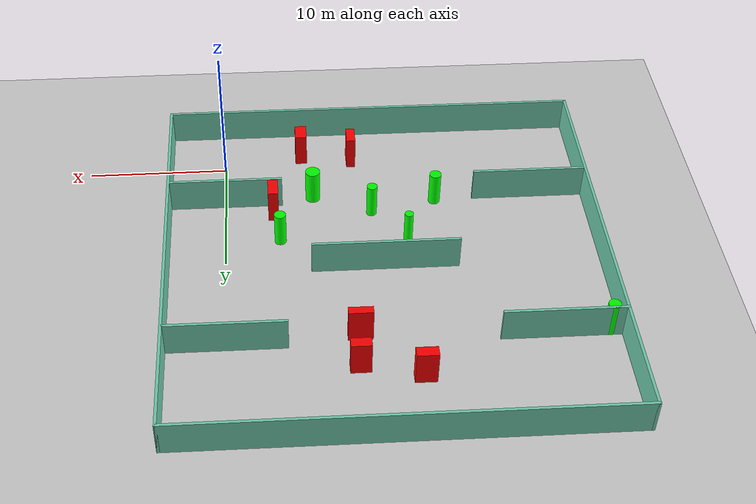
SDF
<sdf version="1.7">
 <world name="default">
  <light name="sun" type="directional">
   <pose>0 0 10 0 -0 0</pose>
   <diffuse>0.8 0.8 0.8 1</diffuse>
   <specular>0.2 0.2 0.2 1</specular>
   <attenuation>
    <range>1000</range>
    <constant>0.9</constant>
    <linear>0.01</linear>
    <quadratic>0.001</quadratic>
   </attenuation>
   <direction>-0.5 0.1 -0.9</direction>
   <spot><inner_angle>0</inner_angle><outer_angle>0</outer_angle><falloff>0</falloff></spot>
  </light>
  <model name="ground_plane">
   <static>1</static>
   <link name="link">
    <collision name="collision">
     <geometry><plane><normal>0 0 1</normal><size>100 100</size></plane></geometry>
     <surface>
      <contact><collide_bitmask>65535</collide_bitmask></contact>
      <friction><ode><mu>100</mu><mu2>50</mu2></ode></friction>
     </surface>
    </collision>
    <visual name="visual">
     <cast_shadows>0</cast_shadows>
     <geometry><plane><normal>0 0 1</normal><size>100 100</size></plane></geometry>
     <material>
      <script><uri>file://media/materials/scripts/gazebo.material</uri><name>Gazebo/Grey</name></script>
     </material>
    </visual>
   </link>
  </model>
  <gravity>0 0 -9.8</gravity>
  <magnetic_field>6e-06 2.3e-05 -4.2e-05</magnetic_field>
  <atmosphere type="adiabatic"/>
  <physics type="ode">
   <max_step_size>0.001</max_step_size>
   <real_time_factor>1</real_time_factor>
   <real_time_update_rate>1000</real_time_update_rate>
  </physics>
  <scene><ambient>0.4 0.4 0.4 1</ambient><background>0.7 0.7 0.7 1</background><shadows>1</shadows></scene>
  <spherical_coordinates>
   <surface_model>EARTH_WGS84</surface_model>
   <latitude_deg>0</latitude_deg>
   <longitude_deg>0</longitude_deg>
   <elevation>0</elevation>
   <heading_deg>0</heading_deg>
  </spherical_coordinates>
  <model name="my_base_walls">
   <link name="Wall_10">
    <collision name="Wall_10_Collision">
     <geometry><box><size>8.2 0.2 2.5</size></box></geometry>
     <pose>0 0 1.25 0 -0 0</pose>
    </collision>
    <visual name="Wall_10_Visual">
     <pose>0 0 1.25 0 -0 0</pose>
     <geometry><box><size>8.2 0.2 2.5</size></box></geometry>
     <material>
      <script><uri>file://media/materials/scripts/gazebo.material</uri><name>Gazebo/Grey</name></script>
      <ambient>0.435294 0.796078 0.67451 1</ambient>
     </material>
     <meta><layer>0</layer></meta>
    </visual>
    <pose>-11 -7 0 0 -0 0</pose>
   </link>
   <link name="Wall_12">
    <collision name="Wall_12_Collision">
     <geometry><box><size>8.2 0.2 2.5</size></box></geometry>
     <pose>0 0 1.25 0 -0 0</pose>
    </collision>
    <visual name="Wall_12_Visual">
     <pose>0 0 1.25 0 -0 0</pose>
     <geometry><box><size>8.2 0.2 2.5</size></box></geometry>
     <material>
      <script><uri>file://media/materials/scripts/gazebo.material</uri><name>Gazebo/Grey</name></script>
      <ambient>0.435294 0.796078 0.67451 1</ambient>
     </material>
     <meta><layer>0</layer></meta>
    </visual>
    <pose>-11 7 0 0 -0 0</pose>
   </link>
   <link name="Wall_14">
    <collision name="Wall_14_Collision">
     <geometry><box><size>8.2 0.2 2.5</size></box></geometry>
     <pose>0 0 1.25 0 -0 0</pose>
    </collision>
    <visual name="Wall_14_Visual">
     <pose>0 0 1.25 0 -0 0</pose>
     <geometry><box><size>8.2 0.2 2.5</size></box></geometry>
     <material>
      <script><uri>file://media/materials/scripts/gazebo.material</uri><name>Gazebo/Grey</name></script>
      <ambient>0.435294 0.796078 0.67451 1</ambient>
     </material>
     <meta><layer>0</layer></meta>
    </visual>
    <pose>11 7 0 0 -0 3.14159</pose>
   </link>
   <link name="Wall_16">
    <collision name="Wall_16_Collision">
     <geometry><box><size>10.2 0.2 2.5</size></box></geometry>
     <pose>0 0 1.25 0 -0 0</pose>
    </collision>
    <visual name="Wall_16_Visual">
     <pose>0 0 1.25 0 -0 0</pose>
     <geometry><box><size>10.2 0.2 2.5</size></box></geometry>
     <material>
      <script><uri>file://media/materials/scripts/gazebo.material</uri><name>Gazebo/Grey</name></script>
      <ambient>0.435294 0.796078 0.67451 1</ambient>
     </material>
     <meta><layer>0</layer></meta>
    </visual>
    <pose>0 0 0 0 -0 3.14159</pose>
   </link>
   <link name="Wall_2">
    <collision name="Wall_2_Collision">
     <geometry><box><size>30.2 0.2 2.5</size></box></geometry>
     <pose>0 0 1.25 0 -0 0</pose>
    </collision>
    <visual name="Wall_2_Visual">
     <pose>0 0 1.25 0 -0 0</pose>
     <geometry><box><size>30.2 0.2 2.5</size></box></geometry>
     <material>
      <script><uri>file://media/materials/scripts/gazebo.material</uri><name>Gazebo/Grey</name></script>
      <ambient>0.435294 0.796078 0.67451 1</ambient>
     </material>
     <meta><layer>0</layer></meta>
    </visual>
    <pose>0 -15 0 0 -0 3.14159</pose>
   </link>
   <link name="Wall_3">
    <collision name="Wall_3_Collision">
     <geometry><box><size>30.2 0.2 2.5</size></box></geometry>
     <pose>0 0 1.25 0 -0 0</pose>
    </collision>
    <visual name="Wall_3_Visual">
     <pose>0 0 1.25 0 -0 0</pose>
     <geometry><box><size>30.2 0.2 2.5</size></box></geometry>
     <material>
      <script><uri>file://media/materials/scripts/gazebo.material</uri><name>Gazebo/Grey</name></script>
      <ambient>0.435294 0.796078 0.67451 1</ambient>
     </material>
     <meta><layer>0</layer></meta>
    </visual>
    <pose>-15 0 0 0 -0 1.5708</pose>
   </link>
   <link name="Wall_4">
    <collision name="Wall_4_Collision">
     <geometry><box><size>30.2 0.2 2.5</size></box></geometry>
     <pose>0 0 1.25 0 -0 0</pose>
    </collision>
    <visual name="Wall_4_Visual">
     <pose>0 0 1.25 0 -0 0</pose>
     <geometry><box><size>30.2 0.2 2.5</size></box></geometry>
     <material>
      <script><uri>file://media/materials/scripts/gazebo.material</uri><name>Gazebo/Grey</name></script>
      <ambient>0.435294 0.796078 0.67451 1</ambient>
     </material>
     <meta><layer>0</layer></meta>
    </visual>
    <pose>0 15 0 0 -0 0</pose>
   </link>
   <link name="Wall_6">
    <collision name="Wall_6_Collision">
     <geometry><box><size>30.2 0.2 2.5</size></box></geometry>
     <pose>0 0 1.25 0 -0 0</pose>
    </collision>
    <visual name="Wall_6_Visual">
     <pose>0 0 1.25 0 -0 0</pose>
     <geometry><box><size>30.2 0.2 2.5</size></box></geometry>
     <material>
      <script><uri>file://media/materials/scripts/gazebo.material</uri><name>Gazebo/Grey</name></script>
      <ambient>0.435294 0.796078 0.67451 1</ambient>
     </material>
     <meta><layer>0</layer></meta>
    </visual>
    <pose>15 0 0 0 -0 1.5708</pose>
   </link>
   <link name="Wall_8">
    <collision name="Wall_8_Collision">
     <geometry><box><size>8.2 0.2 2.5</size></box></geometry>
     <pose>0 0 1.25 0 -0 0</pose>
    </collision>
    <visual name="Wall_8_Visual">
     <pose>0 0 1.25 0 -0 0</pose>
     <geometry><box><size>8.2 0.2 2.5</size></box></geometry>
     <material>
      <script><uri>file://media/materials/scripts/gazebo.material</uri><name>Gazebo/Grey</name></script>
      <ambient>0.435294 0.796078 0.67451 1</ambient>
     </material>
     <meta><layer>0</layer></meta>
    </visual>
    <pose>11 -7 0 0 -0 3.14159</pose>
   </link>
   <static>1</static>
   <pose>-11 11 0 0 -0 0</pose>
  </model>
  <model name="cylinder1">
   <static>1</static>
   <link name="link">
    <inertial>
     <mass>1</mass>
     <inertia><ixx>0.5</ixx><ixy>0</ixy><ixz>0</ixz><iyy>0.5</iyy><iyz>0</iyz><izz>1</izz></inertia>
    </inertial>
    <collision name="collision">
     <geometry><cylinder><radius>0.3688242083239773</radius><length>2.5</length></cylinder></geometry>
    </collision>
    <visual name="visual">
     <geometry><cylinder><radius>0.3688242083239773</radius><length>2.5</length></cylinder></geometry>
     <material>
      <ambient>0 1 0 1</ambient>
      <diffuse>0 1 0 1</diffuse>
      <specular>0.1 0.1 0.1 1</specular>
      <emissive>0 0 0 0</emissive>
     </material>
    </visual>
   </link>
   <pose>-10.479960596599351 5.245953925893517 1.25 0 0 0</pose>
  </model>
  <model name="cylinder2">
   <static>1</static>
   <link name="link">
    <inertial>
     <mass>1</mass>
     <inertia><ixx>0.5</ixx><ixy>0</ixy><ixz>0</ixz><iyy>0.5</iyy><iyz>0</iyz><izz>1</izz></inertia>
    </inertial>
    <collision name="collision">
     <geometry><cylinder><radius>0.41643519739053203</radius><length>2.5</length></cylinder></geometry>
    </collision>
    <visual name="visual">
     <geometry><cylinder><radius>0.41643519739053203</radius><length>2.5</length></cylinder></geometry>
     <material>
      <ambient>0 1 0 1</ambient>
      <diffuse>0 1 0 1</diffuse>
      <specular>0.1 0.1 0.1 1</specular>
      <emissive>0 0 0 0</emissive>
     </material>
    </visual>
   </link>
   <pose>-15.124204734801511 4.175568713787232 1.25 0 0 0</pose>
  </model>
  <model name="cylinder3">
   <static>1</static>
   <link name="link">
    <inertial>
     <mass>1</mass>
     <inertia><ixx>0.5</ixx><ixy>0</ixy><ixz>0</ixz><iyy>0.5</iyy><iyz>0</iyz><izz>1</izz></inertia>
    </inertial>
    <collision name="collision">
     <geometry><cylinder><radius>0.40894727487968563</radius><length>2.5</length></cylinder></geometry>
    </collision>
    <visual name="visual">
     <geometry><cylinder><radius>0.40894727487968563</radius><length>2.5</length></cylinder></geometry>
     <material>
      <ambient>0 1 0 1</ambient>
      <diffuse>0 1 0 1</diffuse>
      <specular>0.1 0.1 0.1 1</specular>
      <emissive>0 0 0 0</emissive>
     </material>
    </visual>
   </link>
   <pose>-3.860155319508422 7.8905841963513925 1.25 0 0 0</pose>
  </model>
  <model name="cylinder4">
   <static>1</static>
   <link name="link">
    <inertial>
     <mass>1</mass>
     <inertia><ixx>0.5</ixx><ixy>0</ixy><ixz>0</ixz><iyy>0.5</iyy><iyz>0</iyz><izz>1</izz></inertia>
    </inertial>
    <collision name="collision">
     <geometry><cylinder><radius>0.422012442263779</radius><length>2.5</length></cylinder></geometry>
    </collision>
    <visual name="visual">
     <geometry><cylinder><radius>0.422012442263779</radius><length>2.5</length></cylinder></geometry>
     <material>
      <ambient>0 1 0 1</ambient>
      <diffuse>0 1 0 1</diffuse>
      <specular>0.1 0.1 0.1 1</specular>
      <emissive>0 0 0 0</emissive>
     </material>
    </visual>
   </link>
   <pose>-25.149906314489314 17.715198458942215 1.25 0 0 0</pose>
  </model>
  <model name="cylinder5">
   <static>1</static>
   <link name="link">
    <inertial>
     <mass>1</mass>
     <inertia><ixx>0.5</ixx><ixy>0</ixy><ixz>0</ixz><iyy>0.5</iyy><iyz>0</iyz><izz>1</izz></inertia>
    </inertial>
    <collision name="collision">
     <geometry><cylinder><radius>0.5229236391042835</radius><length>2.5</length></cylinder></geometry>
    </collision>
    <visual name="visual">
     <geometry><cylinder><radius>0.5229236391042835</radius><length>2.5</length></cylinder></geometry>
     <material>
      <ambient>0 1 0 1</ambient>
      <diffuse>0 1 0 1</diffuse>
      <specular>0.1 0.1 0.1 1</specular>
      <emissive>0 0 0 0</emissive>
     </material>
    </visual>
   </link>
   <pose>-6.335941599820316 3.395346241374412 1.25 0 0 0</pose>
  </model>
  <model name="cylinder6">
   <static>1</static>
   <link name="link">
    <inertial>
     <mass>1</mass>
     <inertia><ixx>0.5</ixx><ixy>0</ixy><ixz>0</ixz><iyy>0.5</iyy><iyz>0</iyz><izz>1</izz></inertia>
    </inertial>
    <collision name="collision">
     <geometry><cylinder><radius>0.306943767927146</radius><length>2.5</length></cylinder></geometry>
    </collision>
    <visual name="visual">
     <geometry><cylinder><radius>0.306943767927146</radius><length>2.5</length></cylinder></geometry>
     <material>
      <ambient>0 1 0 1</ambient>
      <diffuse>0 1 0 1</diffuse>
      <specular>0.1 0.1 0.1 1</specular>
      <emissive>0 0 0 0</emissive>
     </material>
    </visual>
   </link>
   <pose>-12.811644104645193 8.310327251365672 1.25 0 0 0</pose>
  </model>
  <model name="box1">
   <static>1</static>
   <link name="link">
    <inertial>
     <mass>1</mass>
     <inertia><ixx>0.083</ixx><ixy>0</ixy><ixz>0</ixz><iyy>0.083</iyy><iyz>0</iyz><izz>0.083</izz></inertia>
    </inertial>
    <collision name="collision">
     <geometry><box><size>1.3659107315227637 0.7152288673587648 2.5</size></box></geometry>
    </collision>
    <visual name="visual">
     <geometry><box><size>1.3659107315227637 0.7152288673587648 2.5</size></box></geometry>
     <material>
      <ambient>1 0 0 1</ambient>
      <diffuse>1 0 0 1</diffuse>
      <specular>0.1 0.1 0.1 1</specular>
      <emissive>0 0 0 0</emissive>
     </material>
    </visual>
    <sensor name="my_contact" type="contact">
     <contact><collision>box_collision</collision><topic>__default_topic__</topic></contact>
    </sensor>
   </link>
   <pose>-8.606075572209031 20.116239229203753 1.25 0 0 0</pose>
  </model>
  <model name="box2">
   <static>1</static>
   <link name="link">
    <inertial>
     <mass>1</mass>
     <inertia><ixx>0.083</ixx><ixy>0</ixy><ixz>0</ixz><iyy>0.083</iyy><iyz>0</iyz><izz>0.083</izz></inertia>
    </inertial>
    <collision name="collision">
     <geometry><box><size>0.7218257672344117 1.523393312051326 2.5</size></box></geometry>
    </collision>
    <visual name="visual">
     <geometry><box><size>0.7218257672344117 1.523393312051326 2.5</size></box></geometry>
     <material>
      <ambient>1 0 0 1</ambient>
      <diffuse>1 0 0 1</diffuse>
      <specular>0.1 0.1 0.1 1</specular>
      <emissive>0 0 0 0</emissive>
     </material>
    </visual>
    <sensor name="my_contact" type="contact">
     <contact><collision>box_collision</collision><topic>__default_topic__</topic></contact>
    </sensor>
   </link>
   <pose>-3.435645285145476 4.907450516815889 1.25 0 0 0</pose>
  </model>
  <model name="box3">
   <static>1</static>
   <link name="link">
    <inertial>
     <mass>1</mass>
     <inertia><ixx>0.083</ixx><ixy>0</ixy><ixz>0</ixz><iyy>0.083</iyy><iyz>0</iyz><izz>0.083</izz></inertia>
    </inertial>
    <collision name="collision">
     <geometry><box><size>0.6344327120682293 1.4470214982790368 2.5</size></box></geometry>
    </collision>
    <visual name="visual">
     <geometry><box><size>0.6344327120682293 1.4470214982790368 2.5</size></box></geometry>
     <material>
      <ambient>1 0 0 1</ambient>
      <diffuse>1 0 0 1</diffuse>
      <specular>0.1 0.1 0.1 1</specular>
      <emissive>0 0 0 0</emissive>
     </material>
    </visual>
    <sensor name="my_contact" type="contact">
     <contact><collision>box_collision</collision><topic>__default_topic__</topic></contact>
    </sensor>
   </link>
   <pose>-9.33864367677228 -0.7125317475317043 1.25 0 0 0</pose>
  </model>
  <model name="box4">
   <static>1</static>
   <link name="link">
    <inertial>
     <mass>1</mass>
     <inertia><ixx>0.083</ixx><ixy>0</ixy><ixz>0</ixz><iyy>0.083</iyy><iyz>0</iyz><izz>0.083</izz></inertia>
    </inertial>
    <collision name="collision">
     <geometry><box><size>1.6491271792883155 0.5696578243731285 2.5</size></box></geometry>
    </collision>
    <visual name="visual">
     <geometry><box><size>1.6491271792883155 0.5696578243731285 2.5</size></box></geometry>
     <material>
      <ambient>1 0 0 1</ambient>
      <diffuse>1 0 0 1</diffuse>
      <specular>0.1 0.1 0.1 1</specular>
      <emissive>0 0 0 0</emissive>
     </material>
    </visual>
    <sensor name="my_contact" type="contact">
     <contact><collision>box_collision</collision><topic>__default_topic__</topic></contact>
    </sensor>
   </link>
   <pose>-8.792668398146596 17.347981320139922 1.25 0 0 0</pose>
  </model>
  <model name="box5">
   <static>1</static>
   <link name="link">
    <inertial>
     <mass>1</mass>
     <inertia><ixx>0.083</ixx><ixy>0</ixy><ixz>0</ixz><iyy>0.083</iyy><iyz>0</iyz><izz>0.083</izz></inertia>
    </inertial>
    <collision name="collision">
     <geometry><box><size>0.8267676626590255 1.3324248095200955 2.5</size></box></geometry>
    </collision>
    <visual name="visual">
     <geometry><box><size>0.8267676626590255 1.3324248095200955 2.5</size></box></geometry>
     <material>
      <ambient>1 0 0 1</ambient>
      <diffuse>1 0 0 1</diffuse>
      <specular>0.1 0.1 0.1 1</specular>
      <emissive>0 0 0 0</emissive>
     </material>
    </visual>
    <sensor name="my_contact" type="contact">
     <contact><collision>box_collision</collision><topic>__default_topic__</topic></contact>
    </sensor>
   </link>
   <pose>-5.655332933324532 -1.2672598910347839 1.25 0 0 0</pose>
  </model>
  <model name="box6">
   <static>1</static>
   <link name="link">
    <inertial>
     <mass>1</mass>
     <inertia><ixx>0.083</ixx><ixy>0</ixy><ixz>0</ixz><iyy>0.083</iyy><iyz>0</iyz><izz>0.083</izz></inertia>
    </inertial>
    <collision name="collision">
     <geometry><box><size>1.4453264729321456 0.7448848338519649 2.5</size></box></geometry>
    </collision>
    <visual name="visual">
     <geometry><box><size>1.4453264729321456 0.7448848338519649 2.5</size></box></geometry>
     <material>
      <ambient>1 0 0 1</ambient>
      <diffuse>1 0 0 1</diffuse>
      <specular>0.1 0.1 0.1 1</specular>
      <emissive>0 0 0 0</emissive>
     </material>
    </visual>
    <sensor name="my_contact" type="contact">
     <contact><collision>box_collision</collision><topic>__default_topic__</topic></contact>
    </sensor>
   </link>
   <pose>-12.657766162990649 21.123720631045718 1.25 0 0 0</pose>
  </model>
 </world>
</sdf>
